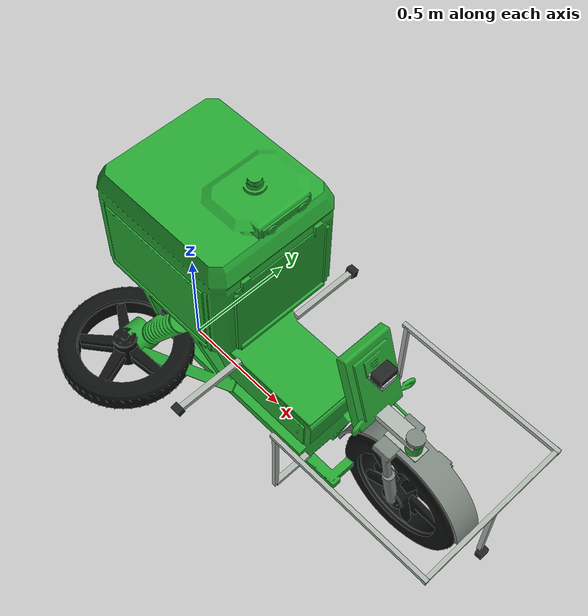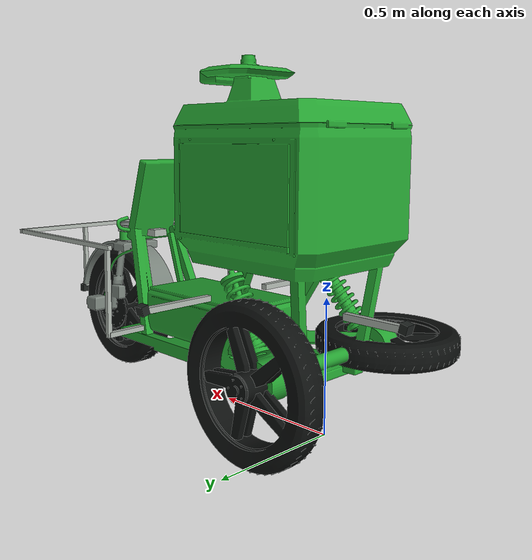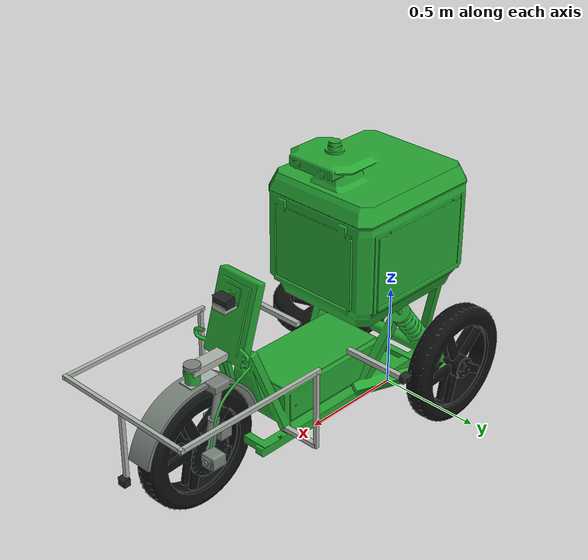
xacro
<?xml version='1.0' encoding='UTF-8'?>
<robot xmlns:xacro="http://www.ros.org/wiki/xacro" name="bglx_concept_etrike">
  <xacro:arg name="controllers_file" default="$(find etrike_description)/config/concept_controllers.yaml" />
  <material name="concept_mount">
    <color rgba="0.22 0.26 0.23 1" />
  </material>
  <link name="base_link">
    <inertial>
      <origin xyz="0.4568493151 0 0.452739726" rpy="0 0 0" />
      <mass value="29.2" />
      <inertia ixx="2.501097489" ixy="0" ixz="0.8218479452" iyy="4.096344292" iyz="0" izz="2.346680137" />
    </inertial>
    <visual name="body_concept_visual">
      <origin xyz="0 0 0" rpy="1.5707963267948966 0 0" />
      <geometry>
        <mesh filename="package://etrike_description/meshes/concept/body.stl" scale="1 1 1" />
      </geometry>
      <material name="bglx_body_green">
        <script>
          <uri>file://media/materials/scripts/gazebo.material</uri>
          <name>Gazebo/DarkGreen</name>
        </script>
      </material>
    </visual>
    <collision name="lower_chassis">
      <origin xyz="0.48 0 0.2225" rpy="0 0 0" />
      <geometry>
        <box size="1.04 0.38 0.095" />
      </geometry>
    </collision>
    <collision name="battery">
      <origin xyz="0.55 0 0.335" rpy="0 0 0" />
      <geometry>
        <box size="0.58 0.32 0.2" />
      </geometry>
    </collision>
    <collision name="cargo_shell">
      <origin xyz="0.18 0 0.882" rpy="0 0 0" />
      <geometry>
        <box size="0.7 0.61 0.58" />
      </geometry>
    </collision>
    <collision name="cargo_support">
      <origin xyz="0.13 0 0.44" rpy="0 0 0" />
      <geometry>
        <box size="0.36 0.47 0.32" />
      </geometry>
    </collision>
    <collision name="display">
      <origin xyz="0.97 0 0.785" rpy="0 -0.3 0" />
      <geometry>
        <box size="0.06 0.225 0.375" />
      </geometry>
    </collision>
    <collision name="head_bearing_support">
      <origin xyz="1.08 0 0.64" rpy="0 0 0" />
      <geometry>
        <box size="0.28 0.065 0.03" />
      </geometry>
    </collision>
    <visual name="head_bearing_support">
      <origin xyz="1.08 0 0.64" rpy="0 0 0" />
      <geometry>
        <box size="0.28 0.065 0.03" />
      </geometry>
      <material name="bglx_aluminum">
        <color rgba="0.68 0.71 0.68 1.0" />
      </material>
    </visual>
    <collision name="sensor_mast">
      <origin xyz="0.42 0 1.243" rpy="0 0 0" />
      <geometry>
        <box size="0.23 0.34 0.142" />
      </geometry>
    </collision>
    <collision name="front_sensor_rail_-1">
      <origin xyz="1.2 -0.34 0.62" rpy="0 0 0" />
      <geometry>
        <box size="0.74 0.018 0.018" />
      </geometry>
    </collision>
    <visual name="front_sensor_rail_-1">
      <origin xyz="1.2 -0.34 0.62" rpy="0 0 0" />
      <geometry>
        <box size="0.74 0.018 0.018" />
      </geometry>
      <material name="bglx_aluminum">
        <color rgba="0.68 0.71 0.68 1.0" />
      </material>
    </visual>
    <collision name="front_sensor_post_-1">
      <origin xyz="0.85 -0.34 0.435" rpy="0 0 0" />
      <geometry>
        <box size="0.018 0.018 0.37" />
      </geometry>
    </collision>
    <visual name="front_sensor_post_-1">
      <origin xyz="0.85 -0.34 0.435" rpy="0 0 0" />
      <geometry>
        <box size="0.018 0.018 0.37" />
      </geometry>
      <material name="bglx_aluminum">
        <color rgba="0.68 0.71 0.68 1.0" />
      </material>
    </visual>
    <collision name="front_sensor_foot_-1">
      <origin xyz="0.85 -0.25 0.26" rpy="0 0 0" />
      <geometry>
        <box size="0.025 0.18 0.02" />
      </geometry>
    </collision>
    <visual name="front_sensor_foot_-1">
      <origin xyz="0.85 -0.25 0.26" rpy="0 0 0" />
      <geometry>
        <box size="0.025 0.18 0.02" />
      </geometry>
      <material name="bglx_aluminum">
        <color rgba="0.68 0.71 0.68 1.0" />
      </material>
    </visual>
    <collision name="side_sensor_mount_-1">
      <origin xyz="0.45 -0.305 0.45" rpy="0 0 0" />
      <geometry>
        <box size="0.025 0.31 0.022" />
      </geometry>
    </collision>
    <visual name="side_sensor_mount_-1">
      <origin xyz="0.45 -0.305 0.45" rpy="0 0 0" />
      <geometry>
        <box size="0.025 0.31 0.022" />
      </geometry>
      <material name="bglx_aluminum">
        <color rgba="0.68 0.71 0.68 1.0" />
      </material>
    </visual>
    <collision name="front_sensor_rail_1">
      <origin xyz="1.2 0.34 0.62" rpy="0 0 0" />
      <geometry>
        <box size="0.74 0.018 0.018" />
      </geometry>
    </collision>
    <visual name="front_sensor_rail_1">
      <origin xyz="1.2 0.34 0.62" rpy="0 0 0" />
      <geometry>
        <box size="0.74 0.018 0.018" />
      </geometry>
      <material name="bglx_aluminum">
        <color rgba="0.68 0.71 0.68 1.0" />
      </material>
    </visual>
    <collision name="front_sensor_post_1">
      <origin xyz="0.85 0.34 0.435" rpy="0 0 0" />
      <geometry>
        <box size="0.018 0.018 0.37" />
      </geometry>
    </collision>
    <visual name="front_sensor_post_1">
      <origin xyz="0.85 0.34 0.435" rpy="0 0 0" />
      <geometry>
        <box size="0.018 0.018 0.37" />
      </geometry>
      <material name="bglx_aluminum">
        <color rgba="0.68 0.71 0.68 1.0" />
      </material>
    </visual>
    <collision name="front_sensor_foot_1">
      <origin xyz="0.85 0.25 0.26" rpy="0 0 0" />
      <geometry>
        <box size="0.025 0.18 0.02" />
      </geometry>
    </collision>
    <visual name="front_sensor_foot_1">
      <origin xyz="0.85 0.25 0.26" rpy="0 0 0" />
      <geometry>
        <box size="0.025 0.18 0.02" />
      </geometry>
      <material name="bglx_aluminum">
        <color rgba="0.68 0.71 0.68 1.0" />
      </material>
    </visual>
    <collision name="side_sensor_mount_1">
      <origin xyz="0.45 0.305 0.45" rpy="0 0 0" />
      <geometry>
        <box size="0.025 0.31 0.022" />
      </geometry>
    </collision>
    <visual name="side_sensor_mount_1">
      <origin xyz="0.45 0.305 0.45" rpy="0 0 0" />
      <geometry>
        <box size="0.025 0.31 0.022" />
      </geometry>
      <material name="bglx_aluminum">
        <color rgba="0.68 0.71 0.68 1.0" />
      </material>
    </visual>
    <collision name="front_sensor_crossbar">
      <origin xyz="1.56 0 0.62" rpy="0 0 0" />
      <geometry>
        <box size="0.018 0.7 0.018" />
      </geometry>
    </collision>
    <visual name="front_sensor_crossbar">
      <origin xyz="1.56 0 0.62" rpy="0 0 0" />
      <geometry>
        <box size="0.018 0.7 0.018" />
      </geometry>
      <material name="bglx_aluminum">
        <color rgba="0.68 0.71 0.68 1.0" />
      </material>
    </visual>
    <collision name="front_sensor_drop">
      <origin xyz="1.56 0 0.46" rpy="0 0 0" />
      <geometry>
        <box size="0.018 0.018 0.3" />
      </geometry>
    </collision>
    <visual name="front_sensor_drop">
      <origin xyz="1.56 0 0.46" rpy="0 0 0" />
      <geometry>
        <box size="0.018 0.018 0.3" />
      </geometry>
      <material name="bglx_aluminum">
        <color rgba="0.68 0.71 0.68 1.0" />
      </material>
    </visual>
    <collision name="rear_sensor_support">
      <origin xyz="-0.2 0 0.45" rpy="0 0 0" />
      <geometry>
        <box size="0.24 0.025 0.025" />
      </geometry>
    </collision>
    <visual name="rear_sensor_support">
      <origin xyz="-0.2 0 0.45" rpy="0 0 0" />
      <geometry>
        <box size="0.24 0.025 0.025" />
      </geometry>
      <material name="bglx_aluminum">
        <color rgba="0.68 0.71 0.68 1.0" />
      </material>
    </visual>
    <collision name="terrain_camera_mount">
      <origin xyz="1.005 0 0.855" rpy="0 0 0" />
      <geometry>
        <box size="0.095 0.07 0.025" />
      </geometry>
    </collision>
    <visual name="terrain_camera_mount">
      <origin xyz="1.005 0 0.855" rpy="0 0 0" />
      <geometry>
        <box size="0.095 0.07 0.025" />
      </geometry>
      <material name="bglx_aluminum">
        <color rgba="0.68 0.71 0.68 1.0" />
      </material>
    </visual>
  </link>
  <link name="base_footprint" />
  <joint name="base_footprint_joint" type="fixed">
    <parent link="base_link" />
    <child link="base_footprint" />
    <origin xyz="0 0 0" rpy="0 0 0" />
  </joint>
  <link name="caster_mount">
    <visual name="steering_concept_visual">
      <origin xyz="-0.07 0 0" rpy="1.5707963267948966 0 0" />
      <geometry>
        <mesh filename="package://etrike_description/meshes/concept/steering.stl" scale="1 1 1" />
      </geometry>
      <material name="bglx_steering">
        <color rgba="0.48 0.52 0.49 1.0" />
      </material>
    </visual>
    <inertial>
      <origin xyz="-0.025 0 -0.19" rpy="0 0 0" />
      <mass value="3" />
      <inertia ixx="0.052" ixy="0" ixz="0" iyy="0.048" iyz="0" izz="0.015" />
    </inertial>
    <collision name="fork_-1">
      <origin xyz="-0.025 -0.076 -0.215" rpy="0 -0.15 0" />
      <geometry>
        <box size="0.047 0.047 0.3" />
      </geometry>
    </collision>
    <collision name="fork_1">
      <origin xyz="-0.025 0.076 -0.215" rpy="0 -0.15 0" />
      <geometry>
        <box size="0.047 0.047 0.3" />
      </geometry>
    </collision>
    <collision name="fork_crown">
      <origin xyz="-0.07 0 -0.075" rpy="0 0 0" />
      <geometry>
        <box size="0.09 0.2 0.04" />
      </geometry>
    </collision>
    <collision name="offset_fork_crown">
      <origin xyz="-0.035 0 -0.075" rpy="0 0 0" />
      <geometry>
        <box size="0.15 0.07 0.038" />
      </geometry>
    </collision>
    <visual name="offset_fork_crown">
      <origin xyz="-0.035 0 -0.075" rpy="0 0 0" />
      <geometry>
        <box size="0.15 0.07 0.038" />
      </geometry>
      <material name="bglx_aluminum">
        <color rgba="0.68 0.71 0.68 1.0" />
      </material>
    </visual>
    <collision name="mudguard_0">
      <origin xyz="0.2814004365 0 -0.2610106046" rpy="0 1.216818957 0" />
      <geometry>
        <box size="0.101 0.12 0.016" />
      </geometry>
    </collision>
    <collision name="mudguard_1">
      <origin xyz="0.2366418447 0 -0.1806073827" rpy="0 0.9088642179 0" />
      <geometry>
        <box size="0.101 0.12 0.016" />
      </geometry>
    </collision>
    <collision name="mudguard_2">
      <origin xyz="0.1696178594 0 -0.117553477" rpy="0 0.6009094786 0" />
      <geometry>
        <box size="0.101 0.12 0.016" />
      </geometry>
    </collision>
    <collision name="mudguard_3">
      <origin xyz="0.08663470007 0 -0.07778156615" rpy="0 0.2929547393 0" />
      <geometry>
        <box size="0.101 0.12 0.016" />
      </geometry>
    </collision>
    <collision name="mudguard_4">
      <origin xyz="-0.004499831252 0 -0.06503374937" rpy="0 -0.015 0" />
      <geometry>
        <box size="0.101 0.12 0.016" />
      </geometry>
    </collision>
    <collision name="mudguard_5">
      <origin xyz="-0.09521097797 0 -0.08050945591" rpy="0 -0.3229547393 0" />
      <geometry>
        <box size="0.101 0.12 0.016" />
      </geometry>
    </collision>
    <collision name="mudguard_6">
      <origin xyz="-0.1769638194 0 -0.1227525921" rpy="0 -0.6309094786 0" />
      <geometry>
        <box size="0.101 0.12 0.016" />
      </geometry>
    </collision>
    <collision name="mudguard_7">
      <origin xyz="-0.2420663127 0 -0.1877885437" rpy="0 -0.9388642179 0" />
      <geometry>
        <box size="0.101 0.12 0.016" />
      </geometry>
    </collision>
    <collision name="mudguard_8">
      <origin xyz="-0.2843930297 0 -0.2694981432" rpy="0 -1.246818957 0" />
      <geometry>
        <box size="0.101 0.12 0.016" />
      </geometry>
    </collision>
    <collision name="axle_sensor">
      <origin xyz="0.035 0.145 -0.34" rpy="0 0 0" />
      <geometry>
        <box size="0.08 0.075 0.065" />
      </geometry>
    </collision>
  </link>
  <joint name="steering_joint" type="revolute">
    <parent link="base_link" />
    <child link="caster_mount" />
    <origin xyz="1.2 0 0.64" rpy="0 0 0" />
    <axis xyz="0 0 1" />
    <limit lower="-1.047" upper="1.047" effort="80" velocity="1.047" />
    <dynamics damping=".4" friction=".02" />
  </joint>
  <link name="front_wheel">
    <visual name="front_wheel_concept_visual">
      <origin xyz="0 0 0" rpy="1.5707963267948966 0 0" />
      <geometry>
        <mesh filename="package://etrike_description/meshes/concept/front_wheel.stl" scale="1 1 1" />
      </geometry>
      <material name="bglx_tire">
        <color rgba="0.055 0.065 0.060 1.0" />
      </material>
    </visual>
    <inertial>
      <origin xyz="0 0 0" rpy="0 0 0" />
      <mass value="2" />
      <inertia ixx="0.0402125" ixy="0" ixz="0" iyy="0.075625" iyz="0" izz="0.0402125" />
    </inertial>
    <collision name="front_wheel_contact">
      <origin xyz="0 0 0" rpy="1.570796327 0 0" />
      <geometry>
        <cylinder radius=".275" length="0.12" />
      </geometry>
    </collision>
  </link>
  <joint name="front_wheel_joint" type="continuous">
    <parent link="caster_mount" />
    <child link="front_wheel" />
    <origin xyz="0 0 -0.365" rpy="0 0 0" />
    <axis xyz="0 1 0" />
    <limit effort="80" velocity="25" />
    <dynamics damping=".02" friction=".005" />
  </joint>
  <gazebo reference="front_wheel">
    <mu1>0.85</mu1>
    <mu2>0.85</mu2>
    <kp>1000000</kp>
    <kd>100</kd>
    <minDepth>0.001</minDepth>
    <maxVel>0.1</maxVel>
  </gazebo>
  <link name="rear_left_wheel">
    <visual name="rear_left_wheel_concept_visual">
      <origin xyz="0 0 0" rpy="1.5707963267948966 0 0" />
      <geometry>
        <mesh filename="package://etrike_description/meshes/concept/rear_left_wheel.stl" scale="1 1 1" />
      </geometry>
      <material name="bglx_tire">
        <color rgba="0.055 0.065 0.060 1.0" />
      </material>
    </visual>
    <inertial>
      <origin xyz="0 0 0" rpy="0 0 0" />
      <mass value="3.2" />
      <inertia ixx="0.06344" ixy="0" ixz="0" iyy="0.121" iyz="0" izz="0.06344" />
    </inertial>
    <collision name="rear_left_wheel_contact">
      <origin xyz="0 0 0" rpy="1.570796327 0 0" />
      <geometry>
        <cylinder radius=".275" length="0.105" />
      </geometry>
    </collision>
  </link>
  <joint name="rear_left_wheel_joint" type="continuous">
    <parent link="base_link" />
    <child link="rear_left_wheel" />
    <origin xyz="0 0.37 0.275" rpy="0 0 0" />
    <axis xyz="0 1 0" />
    <limit effort="80" velocity="25" />
    <dynamics damping=".02" friction=".005" />
  </joint>
  <gazebo reference="rear_left_wheel">
    <mu1>0.85</mu1>
    <mu2>0.85</mu2>
    <kp>1000000</kp>
    <kd>100</kd>
    <minDepth>0.001</minDepth>
    <maxVel>0.1</maxVel>
  </gazebo>
  <link name="rear_right_wheel">
    <visual name="rear_right_wheel_concept_visual">
      <origin xyz="0 0 0" rpy="1.5707963267948966 0 0" />
      <geometry>
        <mesh filename="package://etrike_description/meshes/concept/rear_right_wheel.stl" scale="1 1 1" />
      </geometry>
      <material name="bglx_tire">
        <color rgba="0.055 0.065 0.060 1.0" />
      </material>
    </visual>
    <inertial>
      <origin xyz="0 0 0" rpy="0 0 0" />
      <mass value="3.2" />
      <inertia ixx="0.06344" ixy="0" ixz="0" iyy="0.121" iyz="0" izz="0.06344" />
    </inertial>
    <collision name="rear_right_wheel_contact">
      <origin xyz="0 0 0" rpy="1.570796327 0 0" />
      <geometry>
        <cylinder radius=".275" length="0.105" />
      </geometry>
    </collision>
  </link>
  <joint name="rear_right_wheel_joint" type="continuous">
    <parent link="base_link" />
    <child link="rear_right_wheel" />
    <origin xyz="0 -0.37 0.275" rpy="0 0 0" />
    <axis xyz="0 1 0" />
    <limit effort="80" velocity="25" />
    <dynamics damping=".02" friction=".005" />
  </joint>
  <gazebo reference="rear_right_wheel">
    <mu1>0.85</mu1>
    <mu2>0.85</mu2>
    <kp>1000000</kp>
    <kd>100</kd>
    <minDepth>0.001</minDepth>
    <maxVel>0.1</maxVel>
  </gazebo>
  <link name="lidar_sensor">
    <inertial>
      <origin xyz="0 0 0" rpy="0 0 0" />
      <mass value="0.05" />
      <inertia ixx="1e-05" ixy="0" ixz="0" iyy="1e-05" iyz="0" izz="1e-05" />
    </inertial>
  </link>
  <joint name="lidar_sensor_joint" type="fixed">
    <parent link="base_link" />
    <child link="lidar_sensor" />
    <origin xyz="0.392 0 1.337" rpy="0 0 0" />
  </joint>
  <link name="camera_front_main">
    <inertial>
      <origin xyz="0 0 0" rpy="0 0 0" />
      <mass value="0.05" />
      <inertia ixx="1e-05" ixy="0" ixz="0" iyy="1e-05" iyz="0" izz="1e-05" />
    </inertial>
  </link>
  <joint name="camera_front_main_joint" type="fixed">
    <parent link="base_link" />
    <child link="camera_front_main" />
    <origin xyz="0.551 0.068 1.283" rpy="0 0 0" />
  </joint>
  <link name="depth_camera">
    <inertial>
      <origin xyz="0 0 0" rpy="0 0 0" />
      <mass value="0.05" />
      <inertia ixx="1e-05" ixy="0" ixz="0" iyy="1e-05" iyz="0" izz="1e-05" />
    </inertial>
    <collision name="depth_camera_housing">
      <origin xyz="-0.028 0 0" rpy="0 0 0" />
      <geometry>
        <box size="0.05 0.08 0.04" />
      </geometry>
    </collision>
    <visual name="depth_camera_housing">
      <origin xyz="-0.028 0 0" rpy="0 0 0" />
      <geometry>
        <box size="0.05 0.08 0.04" />
      </geometry>
      <material name="bglx_sensor">
        <color rgba="0.12 0.14 0.13 1.0" />
      </material>
    </visual>
  </link>
  <joint name="depth_camera_joint" type="fixed">
    <parent link="base_link" />
    <child link="depth_camera" />
    <origin xyz="1.05 0 0.88" rpy="0 0 0" />
  </joint>
  <link name="front_lidar_link">
    <inertial>
      <origin xyz="0 0 0" rpy="0 0 0" />
      <mass value="0.05" />
      <inertia ixx="1e-05" ixy="0" ixz="0" iyy="1e-05" iyz="0" izz="1e-05" />
    </inertial>
    <collision name="front_lidar_link_housing">
      <origin xyz="-0.018 0 0" rpy="0 0 0" />
      <geometry>
        <box size="0.03 0.04 0.035" />
      </geometry>
    </collision>
    <visual name="front_lidar_link_housing">
      <origin xyz="-0.018 0 0" rpy="0 0 0" />
      <geometry>
        <box size="0.03 0.04 0.035" />
      </geometry>
      <material name="bglx_sensor">
        <color rgba="0.12 0.14 0.13 1.0" />
      </material>
    </visual>
  </link>
  <joint name="front_lidar_link_joint" type="fixed">
    <parent link="base_link" />
    <child link="front_lidar_link" />
    <origin xyz="1.59 0 0.3" rpy="0 0 0" />
  </joint>
  <link name="left_depth_link">
    <inertial>
      <origin xyz="0 0 0" rpy="0 0 0" />
      <mass value="0.05" />
      <inertia ixx="1e-05" ixy="0" ixz="0" iyy="1e-05" iyz="0" izz="1e-05" />
    </inertial>
    <collision name="left_depth_link_housing">
      <origin xyz="-0.018 0 0" rpy="0 0 0" />
      <geometry>
        <box size="0.03 0.04 0.035" />
      </geometry>
    </collision>
    <visual name="left_depth_link_housing">
      <origin xyz="-0.018 0 0" rpy="0 0 0" />
      <geometry>
        <box size="0.03 0.04 0.035" />
      </geometry>
      <material name="bglx_sensor">
        <color rgba="0.12 0.14 0.13 1.0" />
      </material>
    </visual>
  </link>
  <joint name="left_depth_link_joint" type="fixed">
    <parent link="base_link" />
    <child link="left_depth_link" />
    <origin xyz="0.45 0.48 0.45" rpy="0 0.26 1.570796327" />
  </joint>
  <link name="right_depth_link">
    <inertial>
      <origin xyz="0 0 0" rpy="0 0 0" />
      <mass value="0.05" />
      <inertia ixx="1e-05" ixy="0" ixz="0" iyy="1e-05" iyz="0" izz="1e-05" />
    </inertial>
    <collision name="right_depth_link_housing">
      <origin xyz="-0.018 0 0" rpy="0 0 0" />
      <geometry>
        <box size="0.03 0.04 0.035" />
      </geometry>
    </collision>
    <visual name="right_depth_link_housing">
      <origin xyz="-0.018 0 0" rpy="0 0 0" />
      <geometry>
        <box size="0.03 0.04 0.035" />
      </geometry>
      <material name="bglx_sensor">
        <color rgba="0.12 0.14 0.13 1.0" />
      </material>
    </visual>
  </link>
  <joint name="right_depth_link_joint" type="fixed">
    <parent link="base_link" />
    <child link="right_depth_link" />
    <origin xyz="0.45 -0.48 0.45" rpy="0 0.26 -1.570796327" />
  </joint>
  <link name="rear_depth_link">
    <inertial>
      <origin xyz="0 0 0" rpy="0 0 0" />
      <mass value="0.05" />
      <inertia ixx="1e-05" ixy="0" ixz="0" iyy="1e-05" iyz="0" izz="1e-05" />
    </inertial>
    <collision name="rear_depth_link_housing">
      <origin xyz="-0.018 0 0" rpy="0 0 0" />
      <geometry>
        <box size="0.03 0.04 0.035" />
      </geometry>
    </collision>
    <visual name="rear_depth_link_housing">
      <origin xyz="-0.018 0 0" rpy="0 0 0" />
      <geometry>
        <box size="0.03 0.04 0.035" />
      </geometry>
      <material name="bglx_sensor">
        <color rgba="0.12 0.14 0.13 1.0" />
      </material>
    </visual>
  </link>
  <joint name="rear_depth_link_joint" type="fixed">
    <parent link="base_link" />
    <child link="rear_depth_link" />
    <origin xyz="-0.34 0 0.45" rpy="0 0.26 3.141592654" />
  </joint>
  <link name="depth_camera_optical" />
  <joint name="depth_camera_optical_joint" type="fixed">
    <parent link="depth_camera" />
    <child link="depth_camera_optical" />
    <origin xyz="0 0 0" rpy="-1.570796327 0 -1.570796327" />
  </joint>
  <link name="camera_front_main_optical" />
  <joint name="camera_front_main_optical_joint" type="fixed">
    <parent link="camera_front_main" />
    <child link="camera_front_main_optical" />
    <origin xyz="0 0 0" rpy="-1.570796327 0 -1.570796327" />
  </joint>
  <gazebo reference="lidar_sensor">
    <sensor name="lidar" type="ray">
      <always_on>true</always_on>
      <visualize>true</visualize>
      <update_rate>10</update_rate>
      <ray>
        <scan>
          <horizontal>
            <samples>720</samples>
            <resolution>1</resolution>
            <min_angle>-3.14159</min_angle>
            <max_angle>3.14159</max_angle>
          </horizontal>
        </scan>
        <range>
          <min>0.45</min>
          <max>30.0</max>
          <resolution>0.01</resolution>
        </range>
        <noise>
          <type>gaussian</type>
          <mean>0.0</mean>
          <stddev>0.01</stddev>
        </noise>
      </ray>
      <plugin name="scan" filename="libgazebo_ros_ray_sensor.so">
        <ros>
          <namespace>/etrike</namespace>
          <remapping>~/out:=scan</remapping>
        </ros>
        <output_type>sensor_msgs/LaserScan</output_type>
        <frame_name>lidar_sensor</frame_name>
      </plugin>
    </sensor>
  </gazebo>
  <gazebo reference="camera_front_main">
    <sensor name="camera_front" type="camera">
      <always_on>true</always_on>
      <visualize>false</visualize>
      <update_rate>30</update_rate>
      <camera name="front">
        <horizontal_fov>1.5708</horizontal_fov>
        <image>
          <width>800</width>
          <height>600</height>
          <format>R8G8B8</format>
        </image>
        <clip>
          <near>0.1</near>
          <far>100</far>
        </clip>
        <noise>
          <type>gaussian</type>
          <mean>0.0</mean>
          <stddev>0.005</stddev>
        </noise>
      </camera>
      <plugin name="camera_front_controller" filename="libgazebo_ros_camera.so">
        <ros>
          <namespace>/etrike</namespace>
          <remapping>image_raw:=/etrike/front/image_raw</remapping>
          <remapping>camera_info:=/etrike/front/camera_info</remapping>
        </ros>
        <camera_name>front</camera_name>
        <frame_name>camera_front_main_optical</frame_name>
      </plugin>
    </sensor>
  </gazebo>
  <gazebo reference="base_link">
    <sensor name="imu_sensor" type="imu">
      <always_on>true</always_on>
      <update_rate>100</update_rate>
      <visualize>false</visualize>
      <imu>
        <angular_velocity>
          <x>
            <noise type="gaussian">
              <mean>0.0</mean>
              <stddev>0.0002</stddev>
            </noise>
          </x>
          <y>
            <noise type="gaussian">
              <mean>0.0</mean>
              <stddev>0.0002</stddev>
            </noise>
          </y>
          <z>
            <noise type="gaussian">
              <mean>0.0</mean>
              <stddev>0.0002</stddev>
            </noise>
          </z>
        </angular_velocity>
        <linear_acceleration>
          <x>
            <noise type="gaussian">
              <mean>0.0</mean>
              <stddev>0.017</stddev>
            </noise>
          </x>
          <y>
            <noise type="gaussian">
              <mean>0.0</mean>
              <stddev>0.017</stddev>
            </noise>
          </y>
          <z>
            <noise type="gaussian">
              <mean>0.0</mean>
              <stddev>0.017</stddev>
            </noise>
          </z>
        </linear_acceleration>
      </imu>
      <plugin name="imu_plugin" filename="libgazebo_ros_imu_sensor.so">
        <ros>
          <namespace>/etrike</namespace>
          <remapping>~/out:=imu</remapping>
        </ros>
        <initial_orientation_as_reference>false</initial_orientation_as_reference>
        <frame_name>base_link</frame_name>
      </plugin>
    </sensor>
  </gazebo>
  <gazebo reference="depth_camera">
    <sensor name="front_depth_camera" type="depth">
      <always_on>true</always_on>
      <update_rate>15</update_rate>
      <visualize>true</visualize>

      <camera name="front_depth_camera">
        <horizontal_fov>1.047</horizontal_fov>
        <image>
          <width>640</width>
          <height>480</height>
          <format>R8G8B8</format>
        </image>
        <clip>
          <near>0.15</near>
          <far>6.0</far>
        </clip>
      </camera>

      <plugin name="front_depth_camera_controller" filename="libgazebo_ros_camera.so">
        <ros>
          <namespace>/etrike</namespace>
          <remapping>image_raw:=front_camera/image_raw</remapping>
          <remapping>camera_info:=front_camera/camera_info</remapping>
          <remapping>depth/image_raw:=front_camera/depth/image_raw</remapping>
          <remapping>depth/camera_info:=front_camera/depth/camera_info</remapping>
        </ros>

        <camera_name>front_camera</camera_name>
        <frame_name>depth_camera_optical</frame_name>
      </plugin>
    </sensor>
    <sensor name="front_depth" type="depth">
      <always_on>true</always_on>
      <update_rate>10</update_rate>
      <visualize>false</visualize>
      <camera name="front_terrain">
        <horizontal_fov>1.22173</horizontal_fov>
        <image>
          <width>320</width>
          <height>240</height>
          <format>R8G8B8</format>
        </image>
        <clip>
          <near>0.15</near>
          <far>4.0</far>
        </clip>
      </camera>
      <plugin name="front_terrain_depth_controller" filename="libgazebo_ros_camera.so">
        <ros>
          <namespace>/etrike</namespace>
          <remapping>image_raw:=/etrike/front_depth/image_raw</remapping><remapping>camera_info:=/etrike/front_depth/camera_info</remapping><remapping>depth/image_raw:=/etrike/front_depth/depth/image_raw</remapping><remapping>depth/camera_info:=/etrike/front_depth/depth/camera_info</remapping><remapping>points:=/etrike/front_depth/points</remapping></ros>
        <camera_name>front_depth</camera_name>
        <frame_name>depth_camera_optical</frame_name>
        <pointCloudCutoff>0.15</pointCloudCutoff>
        <pointCloudCutoffMax>4.0</pointCloudCutoffMax>
      </plugin>
    </sensor>
  </gazebo>
  <gazebo reference="front_lidar_link">
    <sensor name="front_lidar" type="ray">
      <always_on>true</always_on>
      <visualize>false</visualize>
      <update_rate>15</update_rate>
      <ray>
        <scan>
          <horizontal>
            <samples>360</samples>
            <resolution>1</resolution>
            <min_angle>-2.0944</min_angle>
            <max_angle>2.0944</max_angle>
          </horizontal>
        </scan>
        <range>
          <min>0.15</min>
          <max>5.0</max>
          <resolution>0.01</resolution>
        </range>
        <noise>
          <type>gaussian</type>
          <mean>0.0</mean>
          <stddev>0.01</stddev>
        </noise>
      </ray>
      <plugin name="front_scan" filename="libgazebo_ros_ray_sensor.so">
        <ros>
          <namespace>/etrike</namespace>
          <remapping>~/out:=front_scan</remapping>
        </ros>
        <output_type>sensor_msgs/LaserScan</output_type>
        <frame_name>front_lidar_link</frame_name>
      </plugin>
    </sensor>
  </gazebo>
  <gazebo reference="left_depth_link">
    <material>Gazebo/Black</material>
    <sensor name="left_depth" type="ray">
      <always_on>true</always_on>
      <update_rate>15</update_rate>
      <visualize>false</visualize>
      <ray>
        <scan>
          <horizontal>
            <samples>15</samples>
            <resolution>1</resolution>
            <min_angle>-0.35</min_angle>
            <max_angle>0.35</max_angle>
          </horizontal>
          <vertical>
            <samples>5</samples>
            <resolution>1</resolution>
            <min_angle>-0.20</min_angle>
            <max_angle>0.20</max_angle>
          </vertical>
        </scan>
        <range>
          <min>0.05</min>
          <max>4.0</max>
          <resolution>0.01</resolution>
        </range>
      </ray>
      <plugin filename="libgazebo_ros_ray_sensor.so" name="left_depth_controller">
        <ros>
          <namespace>/etrike</namespace>
          <remapping>~/out:=left_depth/scan</remapping>
        </ros>
        <output_type>sensor_msgs/LaserScan</output_type>
        <frame_name>left_depth_link</frame_name>
      </plugin>
    </sensor>
  </gazebo>
  <gazebo reference="right_depth_link">
    <material>Gazebo/Black</material>
    <sensor name="right_depth" type="ray">
      <always_on>true</always_on>
      <update_rate>15</update_rate>
      <visualize>false</visualize>
      <ray>
        <scan>
          <horizontal>
            <samples>15</samples>
            <resolution>1</resolution>
            <min_angle>-0.35</min_angle>
            <max_angle>0.35</max_angle>
          </horizontal>
          <vertical>
            <samples>5</samples>
            <resolution>1</resolution>
            <min_angle>-0.20</min_angle>
            <max_angle>0.20</max_angle>
          </vertical>
        </scan>
        <range>
          <min>0.05</min>
          <max>4.0</max>
          <resolution>0.01</resolution>
        </range>
      </ray>
      <plugin filename="libgazebo_ros_ray_sensor.so" name="right_depth_controller">
        <ros>
          <namespace>/etrike</namespace>
          <remapping>~/out:=right_depth/scan</remapping>
        </ros>
        <output_type>sensor_msgs/LaserScan</output_type>
        <frame_name>right_depth_link</frame_name>
      </plugin>
    </sensor>
  </gazebo>
  <gazebo reference="rear_depth_link">
    <material>Gazebo/Black</material>
    <sensor name="rear_depth" type="ray">
      <always_on>true</always_on>
      <update_rate>15</update_rate>
      <visualize>false</visualize>
      <ray>
        <scan>
          <horizontal>
            <samples>15</samples>
            <resolution>1</resolution>
            <min_angle>-0.35</min_angle>
            <max_angle>0.35</max_angle>
          </horizontal>
          <vertical>
            <samples>5</samples>
            <resolution>1</resolution>
            <min_angle>-0.20</min_angle>
            <max_angle>0.20</max_angle>
          </vertical>
        </scan>
        <range>
          <min>0.05</min>
          <max>4.0</max>
          <resolution>0.01</resolution>
        </range>
      </ray>
      <plugin filename="libgazebo_ros_ray_sensor.so" name="rear_depth_controller">
        <ros>
          <namespace>/etrike</namespace>
          <remapping>~/out:=rear_depth/scan</remapping>
        </ros>
        <output_type>sensor_msgs/LaserScan</output_type>
        <frame_name>rear_depth_link</frame_name>
      </plugin>
    </sensor>
  </gazebo>
  <ros2_control name="GazeboSystem" type="system">
    <hardware>
      <plugin>gazebo_ros2_control/GazeboSystem</plugin>
    </hardware>
    <joint name="steering_joint">
      <command_interface name="position">
        <param name="min">-1.047</param>
        <param name="max">1.047</param>
      </command_interface>
      <state_interface name="position" />
      <state_interface name="velocity" />
    </joint>
    <joint name="rear_left_wheel_joint">
      <command_interface name="velocity">
        <param name="min">-25.0</param>
        <param name="max">25.0</param>
      </command_interface>
      <state_interface name="velocity" />
      <state_interface name="position" />
    </joint>
    <joint name="rear_right_wheel_joint">
      <command_interface name="velocity">
        <param name="min">-25.0</param>
        <param name="max">25.0</param>
      </command_interface>
      <state_interface name="velocity" />
      <state_interface name="position" />
    </joint>
    <joint name="front_wheel_joint">
      <state_interface name="position" />
      <state_interface name="velocity" />
    </joint>
  </ros2_control>
  <gazebo>
    <plugin filename="libgazebo_ros2_control.so" name="gazebo_ros2_control">
      <parameters>$(arg controllers_file)</parameters>
      <robot_param>robot_description</robot_param>
      <robot_param_node>robot_state_publisher</robot_param_node>
    </plugin>
  </gazebo>
  <gazebo reference="base_link">
    <material>Gazebo/DarkGreen</material>
  </gazebo>
  <gazebo reference="caster_mount">
    <material>Gazebo/Grey</material>
  </gazebo>
  <gazebo reference="front_wheel">
    <material>Gazebo/Black</material>
  </gazebo>
  <gazebo reference="rear_left_wheel">
    <material>Gazebo/Black</material>
  </gazebo>
  <gazebo reference="rear_right_wheel">
    <material>Gazebo/Black</material>
  </gazebo>
  <gazebo reference="depth_camera">
    <material>Gazebo/DarkGrey</material>
  </gazebo>
  <gazebo reference="front_lidar_link">
    <material>Gazebo/DarkGrey</material>
  </gazebo>
  <gazebo reference="left_depth_link">
    <material>Gazebo/DarkGrey</material>
  </gazebo>
  <gazebo reference="right_depth_link">
    <material>Gazebo/DarkGrey</material>
  </gazebo>
  <gazebo reference="rear_depth_link">
    <material>Gazebo/DarkGrey</material>
  </gazebo>
</robot>
